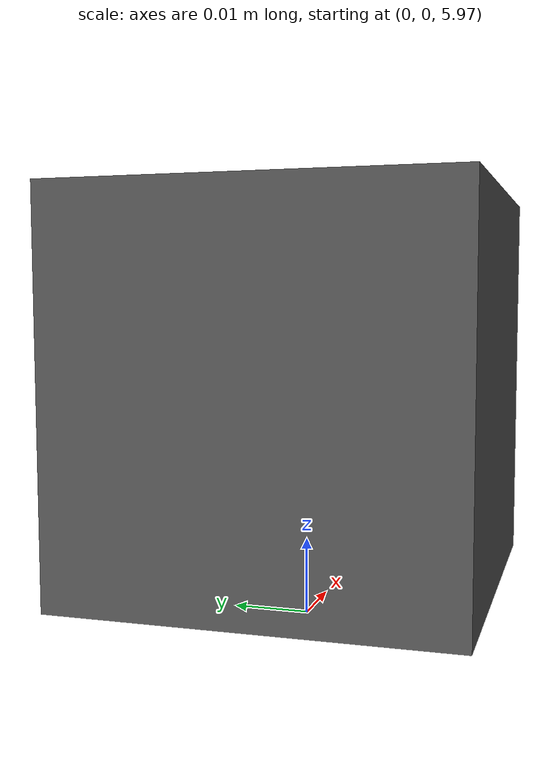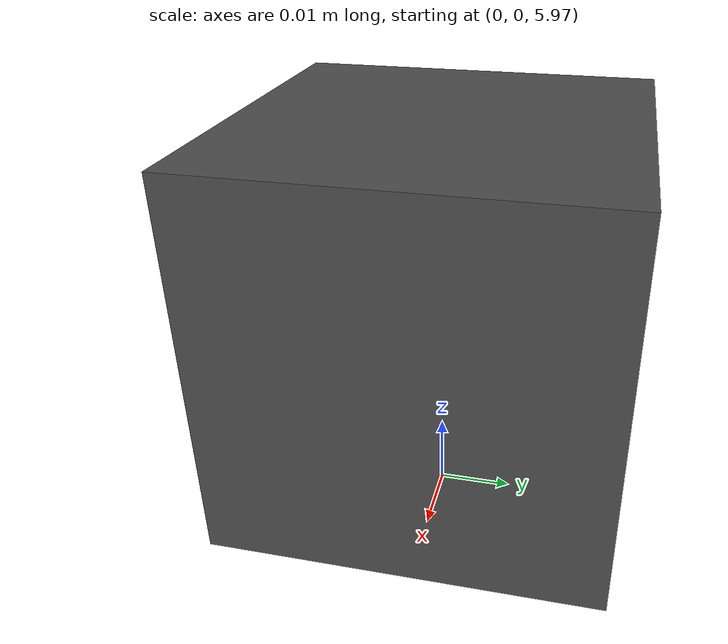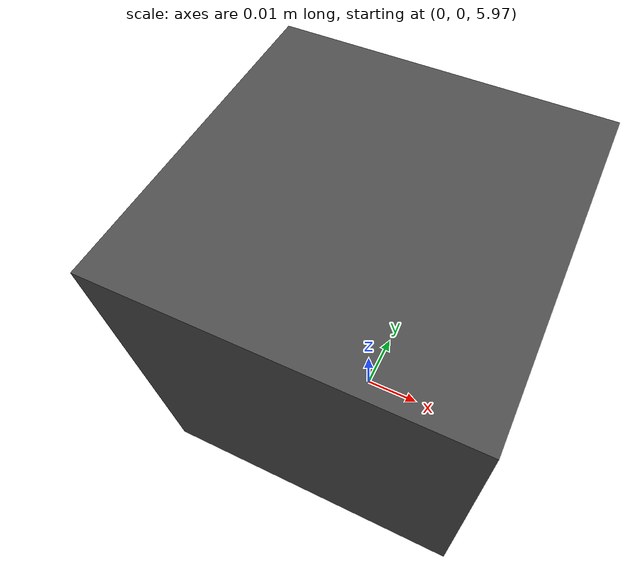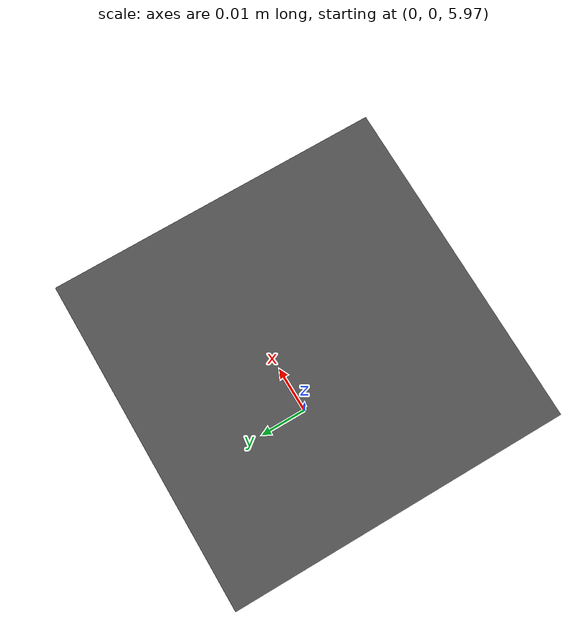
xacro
<?xml version="1.0"?>
<robot xmlns:xacro="http://www.ros.org/wiki/xacro">

    <xacro:property name="base_length" value="0.05" />
    <xacro:property name="base_width" value="0.05" />
    <xacro:property name="base_height" value="0.05" />
    <link name="world"></link>
    <link name="camera_link">
        <visual>
            <geometry>
                <box size="${base_length} ${base_width} ${base_height}" />
            </geometry>
            <origin xyz="0 0 0" rpy="0 0 0" />
        </visual>
        <collision>
            <geometry>
                <box size="${base_length} ${base_width} ${base_height}" />
            </geometry>
            <origin xyz="0 0 0" rpy="0 0 0" />
        </collision>
        <xacro:box_inertia m="5.0" l="${base_length}" w="${base_width}" h="${base_height}"
                           xyz="0 0 0" rpy="0 0 0" />
    </link>

    <joint name="world_camera_joint" type="fixed">
        <parent link="world" />
        <child link="camera_link" />
        <origin xyz="0 0 6" rpy="0 ${pi / 2.0} 0" />
    </joint>

    <link name="camera_link_optical"/>

    <joint name="camera_optical_joint" type="fixed">
        <!-- these values have to be these values otherwise the gazebo camera
            image won't be aligned properly with the frame it is supposedly
            originating from -->
        <origin xyz="0 0 0" rpy="${-pi/2} 0 ${-pi/2}"/>
        <parent link="camera_link"/>
        <child link="camera_link_optical"/>
    </joint>

    <gazebo reference="camera_link">
        <material>Gazebo/DarkGrey</material>
        <sensor name="world_cam" type="camera">
                <update_rate>10.0</update_rate>
                <pose>0 0 0 0 0 0</pose>
                <visualize>true</visualize>

                <camera>
		            <image>
		                <width>1920</width>
		                <height>1920</height>
                        <format>R8G8B8</format>
	                </image>

                    <clip>
                        <near>0.02</near>
                        <far>300</far>
                    </clip>

                    <noise>
                        <type>gaussian</type>
                        <mean>0.0</mean>
                        <stddev>0.0</stddev>
                    </noise>
	            </camera>

                <plugin name="camera_controller" filename="libgazebo_ros_camera.so">
                    <frame_name>camera_link</frame_name>
                    <distortionK1>0.0</distortionK1>
                    <distortionK2>0.0</distortionK2>
                    <distortionK3>0.0</distortionK3>
                    <distortionT1>0.0</distortionT1>
                    <distortionT2>0.0</distortionT2>
                </plugin>

        </sensor>
    </gazebo>

</robot>
